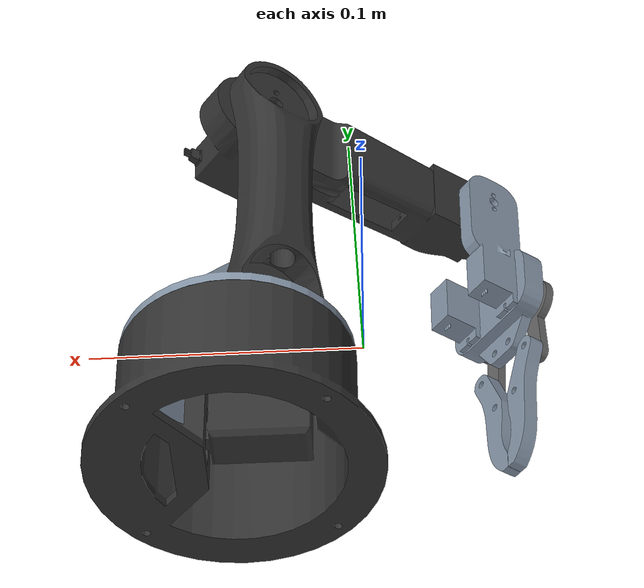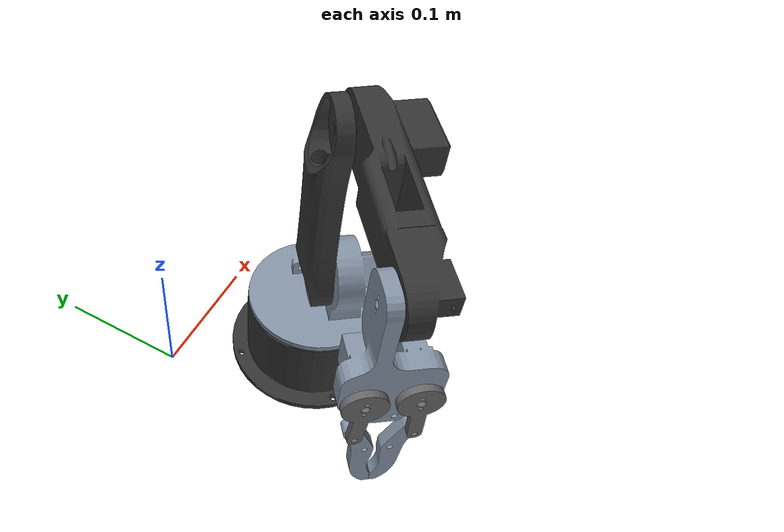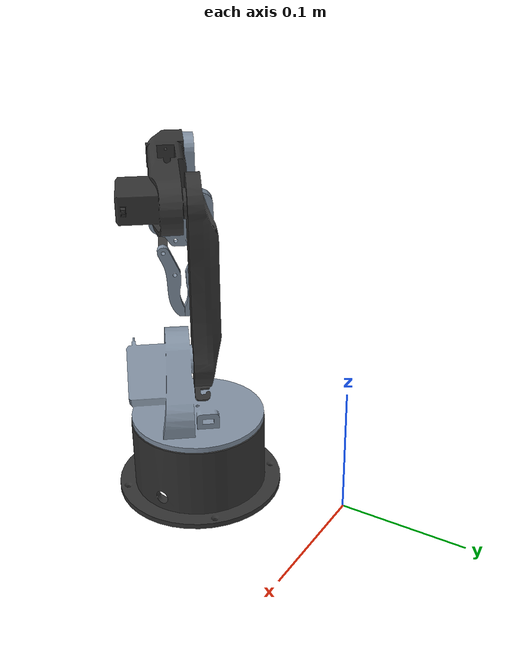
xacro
<?xml version="1.0"?>
<robot xmlns:xacro="http://www.ros.org/wiki/xacro" name="urdf_moveit">
    <xacro:arg name="initial_positions_file" default="initial_positions.yaml" />

    <!-- Import urdf_moveit urdf file -->
    <xacro:include filename="$(find my_robot_arm_pkg)/urdf/urdf_moveit.urdf" />

    <!-- Import control_xacro -->
    <xacro:include filename="urdf_moveit.ros2_control.xacro" />

    <xacro:urdf_moveit_ros2_control name="FakeSystem" initial_positions_file="$(arg initial_positions_file)"/>

</robot>

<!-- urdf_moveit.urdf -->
<robot name="urdf_moveit" xmlns:xacro="http://www.ros.org/wiki/xacro">

  <link name="world"/>

  <joint name="world_to_base" type="fixed">
    <parent link="world"/>
    <child link="base_link"/>
  </joint>

   <link
    name="base_link">
    <inertial>
      <origin
        xyz="0.052962 -0.094417 0.049594"
        rpy="0 0 0" />
      <mass
        value="0.119" />
      <inertia
        ixx="0.00013383"
        ixy="6.8295E-11"
        ixz="3.6366E-06"
        iyy="0.00014723"
        iyz="5.1205E-12"
        izz="0.000214" />
    </inertial>
    <visual>
      <origin
        xyz="0 0 0"
        rpy="0 0 0" />
      <geometry>
        <mesh
          filename="file:///home/ahmed/Robotics-Project-main/src/my_robot_arm_pkg/meshes/base_link.STL" />
      </geometry>
      <material
        name="">
        <color
          rgba="0.2 0.2 0.2 1.0" />
      </material>
    </visual>
    <collision>
      <origin
        xyz="0 0 0"
        rpy="0 0 0" />
      <geometry>
        <mesh
          filename="file:///home/ahmed/Robotics-Project-main/src/my_robot_arm_pkg/meshes/base_link.STL" />
      </geometry>
    </collision>
  </link>
  <link
    name="link1">
    <inertial>
      <origin
        xyz="0.0059207 -0.012971 0.022635"
        rpy="0 0 0" />
      <mass
        value="0.093" />
      <inertia
        ixx="5.7426E-05"
        ixy="-5.6415E-06"
        ixz="3.3676E-06"
        iyy="5.9444E-05"
        iyz="8.899E-06"
        izz="6.238E-05" />
    </inertial>
    <visual>
      <origin
        xyz="0 0 0"
        rpy="0 0 0" />
      <geometry>
        <mesh
          filename="file:///home/ahmed/Robotics-Project-main/src/my_robot_arm_pkg/meshes/link1.STL" />
      </geometry>
      <material
        name="">
        <color
          rgba="0.52 0.58 0.65 1.0" />
      </material>
    </visual>
    <collision>
      <origin
        xyz="0 0 0"
        rpy="0 0 0" />
      <geometry>
        <mesh
          filename="file:///home/ahmed/Robotics-Project-main/src/my_robot_arm_pkg/meshes/link1.STL" />
      </geometry>
    </collision>
  </link>
  <joint
    name="J1"
    type="revolute">
    <origin
      xyz="0.05542 -0.094417 0.082"
      rpy="0 0 0" />
    <parent
      link="base_link" />
    <child
      link="link1" />
    <axis
      xyz="0 0 1" />
    <limit
      lower="0"
      upper="3.14"
      effort="0.92"
      velocity="6.16" />
  </joint>
  <link
    name="link2">
    <inertial>
      <origin
        xyz="-0.00012999 0.058589 0.0077691"
        rpy="0 0 0" />
      <mass
        value="0.032" />
      <inertia
        ixx="0.00010704"
        ixy="-1.7383E-09"
        ixz="2.5177E-10"
        iyy="9.11E-06"
        iyz="2.396E-07"
        izz="0.00011184" />
    </inertial>
    <visual>
      <origin
        xyz="0 0 0"
        rpy="0 0 0" />
      <geometry>
        <mesh
          filename="file:///home/ahmed/Robotics-Project-main/src/my_robot_arm_pkg/meshes/link2.STL" />
      </geometry>
      <material
        name="">
        <color
          rgba="0.2 0.2 0.2 1.0" />
      </material>
    </visual>
    <collision>
      <origin
        xyz="0 0 0"
        rpy="0 0 0" />
      <geometry>
        <mesh
          filename="file:///home/ahmed/Robotics-Project-main/src/my_robot_arm_pkg/meshes/link2.STL" />
      </geometry>
    </collision>
  </link>
  <joint
    name="J2"
    type="revolute">
    <origin
      xyz="-0.0099117 -0.009936 0.040276"
      rpy="1.5708 0 -2.4836" />
    <parent
      link="link1" />
    <child
      link="link2" />
    <axis
      xyz="0 0 -1" />
    <limit
      lower="-1.57"
      upper="1.57"
      effort="0.92"
      velocity="6.16" />
  </joint>
  <link
    name="link3">
    <inertial>
      <origin
        xyz="0.045369 -4.58E-05 -0.01512"
        rpy="0 0 0" />
      <mass
        value="0.101" />
      <inertia
        ixx="1.8199E-05"
        ixy="-5.8051E-08"
        ixz="-4.9913E-08"
        iyy="6.8738E-05"
        iyz="4.0491E-09"
        izz="6.9563E-05" />
    </inertial>
    <visual>
      <origin
        xyz="0 0 0"
        rpy="0 0 0" />
      <geometry>
        <mesh
          filename="file:///home/ahmed/Robotics-Project-main/src/my_robot_arm_pkg/meshes/link3.STL" />
      </geometry>
      <material
        name="">
        <color
          rgba="0.2 0.2 0.2 1.0" />
      </material>
    </visual>
    <collision>
      <origin
        xyz="0 0 0"
        rpy="0 0 0" />
      <geometry>
        <mesh
          filename="file:///home/ahmed/Robotics-Project-main/src/my_robot_arm_pkg/meshes/link3.STL" />
      </geometry>
    </collision>
  </link>
  <joint
    name="J3"
    type="revolute">
    <origin
      xyz="0 0.12 0"
      rpy="0 0 0" />
    <parent
      link="link2" />
    <child
      link="link3" />
    <axis
      xyz="0 0 1" />
    <limit
      lower="-"
      upper="3.14"
      effort="0.92"
      velocity="6.16" />
  </joint>
  <link
    name="link4">
    <inertial>
      <origin
        xyz="-0.0029037 0.043012 -0.0031096"
        rpy="0 0 0" />
      <mass
        value="0.0326" />
      <inertia
        ixx="1.9847E-05"
        ixy="2.5863E-06"
        ixz="-3.8847E-07"
        iyy="5.6319E-06"
        iyz="1.9904E-06"
        izz="1.8296E-05" />
    </inertial>
    <visual>
      <origin
        xyz="0 0 0"
        rpy="0 0 0" />
      <geometry>
        <mesh
          filename="file:///home/ahmed/Robotics-Project-main/src/my_robot_arm_pkg/meshes/link4.STL" />
      </geometry>
      <material
        name="">
        <color
          rgba="0.52 0.58 0.65 1.0" />
      </material>
    </visual>
    <collision>
      <origin
        xyz="0 0 0"
        rpy="0 0 0" />
      <geometry>
        <mesh
          filename="file:///home/ahmed/Robotics-Project-main/src/my_robot_arm_pkg/meshes/link4.STL" />
      </geometry>
    </collision>
  </link>
  <joint
    name="J4"
    type="revolute">
    <origin
      xyz="0.11785 -0.0003 0.00515"
      rpy="0 0 -3.1416" />
    <parent
      link="link3" />
    <child
      link="link4" />
    <axis
      xyz="0 0 1" />
    <limit
      lower="0"
      upper="3.14"
      effort="0.13"
      velocity="8.72" />
  </joint>
  <link
    name="link6">
    <inertial>
      <origin
        xyz="0.00039698 -0.0062489 0.002"
        rpy="0 0 0" />
      <mass
        value="0.002" />
      <inertia
        ixx="3.3647E-07"
        ixy="1.6687E-08"
        ixz="-1.7255E-17"
        iyy="7.4869E-08"
        iyz="3.4134E-16"
        izz="4.0497E-07" />
    </inertial>
    <visual>
      <origin
        xyz="0 0 0"
        rpy="0 0 0" />
      <geometry>
        <mesh
          filename="file:///home/ahmed/Robotics-Project-main/src/my_robot_arm_pkg/meshes/link6.STL" />
      </geometry>
      <material
        name="">
        <color
          rgba="0.4 0.4 0.4 1.0" />
      </material>
    </visual>
    <collision>
      <origin
        xyz="0 0 0"
        rpy="0 0 0" />
      <geometry>
        <mesh
          filename="file:///home/ahmed/Robotics-Project-main/src/my_robot_arm_pkg/meshes/link6.STL" />
      </geometry>
    </collision>
  </link>
  <joint
    name="J6"
    type="revolute">
    <origin
      xyz="-0.01585 0.0581 -0.0194"
      rpy="3.1416 1.5708 0" />
    <parent
      link="link4" />
    <child
      link="link6" />
    <axis
      xyz="0 0 -1" />
    <limit
      upper="0"
      lower="-1.501"
      effort="0.13"
      velocity="8.72" />
  </joint>
  <link
    name="leftTip">
    <inertial>
      <origin
        xyz="-0.0066699 -0.026438 -0.003425"
        rpy="0 0 0" />
      <mass
        value="0.0028" />
      <inertia
        ixx="1.3145E-06"
        ixy="-2.1507E-07"
        ixz="9.0908E-12"
        iyy="1.0069E-07"
        iyz="6.1836E-13"
        izz="1.3812E-06" />
    </inertial>
    <visual>
      <origin
        xyz="0 0 0"
        rpy="0 0 0" />
      <geometry>
        <mesh
          filename="file:///home/ahmed/Robotics-Project-main/src/my_robot_arm_pkg/meshes/leftTip.STL" />
      </geometry>
      <material
        name="">
        <color
          rgba="0.52 0.58 0.65 1.0" />
      </material>
    </visual>
    <collision>
      <origin
        xyz="0 0 0"
        rpy="0 0 0" />
      <geometry>
        <mesh
          filename="file:///home/ahmed/Robotics-Project-main/src/my_robot_arm_pkg/meshes/leftTip.STL" />
      </geometry>
    </collision>
  </link>
  <joint name="leftTip_joint" type="revolute">
    <origin xyz="0.0019496 -0.030688 0" rpy="0 0 0" />
    <parent link="link6" />
    <child link="leftTip" />
    <axis xyz="0 0 1" />
    <limit upper="0" lower="-1.501" effort="10" velocity="1.0" />
  </joint>
  <link
    name="link5">
    <inertial>
      <origin
        xyz="-0.00039698 -0.0062489 0.002"
        rpy="0 0 0" />
      <mass
        value="0.002" />
      <inertia
        ixx="3.3647E-07"
        ixy="-1.6687E-08"
        ixz="1.7255E-17"
        iyy="7.4869E-08"
        iyz="3.4134E-16"
        izz="4.0497E-07" />
    </inertial>
    <visual>
      <origin
        xyz="0 0 0"
        rpy="0 0 0" />
      <geometry>
        <mesh
          filename="file:///home/ahmed/Robotics-Project-main/src/my_robot_arm_pkg/meshes/link5.STL" />
      </geometry>
      <material
        name="">
        <color
          rgba="0.4 0.4 0.4 1.0" />
      </material>
    </visual>
    <collision>
      <origin
        xyz="0 0 0"
        rpy="0 0 0" />
      <geometry>
        <mesh
          filename="file:///home/ahmed/Robotics-Project-main/src/my_robot_arm_pkg/meshes/link5.STL" />
      </geometry>
    </collision>
  </link>
  <joint
    name="J5"
    type="revolute">
    <origin
      xyz="-0.01585 0.0581 0.0084"
      rpy="3.1416 1.5708 0" />
    <parent
      link="link4" />
    <child
      link="link5" />
    <axis
      xyz="0 0 -1" />
    <limit
      upper="1.501"
      lower="0"
      effort="0.13"
      velocity="8.72" />
  </joint>
  <link
    name="rightTip">
    <inertial>
      <origin
        xyz="0.0066699 -0.026438 -0.003425"
        rpy="0 0 0" />
      <mass
        value="0.0028" />
      <inertia
        ixx="1.3145E-06"
        ixy="2.1507E-07"
        ixz="9.0903E-12"
        iyy="1.0069E-07"
        iyz="-6.1572E-13"
        izz="1.3812E-06" />
    </inertial>
    <visual>
      <origin
        xyz="0 0 0"
        rpy="0 0 0" />
      <geometry>
        <mesh
          filename="file:///home/ahmed/Robotics-Project-main/src/my_robot_arm_pkg/meshes/rightTip.STL" />
      </geometry>
      <material
        name="">
        <color
          rgba="0.52 0.58 0.65 1.0" />
      </material>
    </visual>
    <collision>
      <origin
        xyz="0 0 0"
        rpy="0 0 0" />
      <geometry>
        <mesh
          filename="file:///home/ahmed/Robotics-Project-main/src/my_robot_arm_pkg/meshes/rightTip.STL" />
      </geometry>
    </collision>
  </link>
  <joint name="rightTip_joint" type="revolute">
    <origin xyz="-0.0019496 -0.030688 0" rpy="0 0 0" />
    <parent link="link5" />
    <child link="rightTip" />
    <axis xyz="0 0 1" />
    <limit lower="0" upper="1.5" effort="10" velocity="1.0" />
  </joint>

  <ros2_control name="RobotSystem" type="system">
    <hardware>
      <plugin>gz_ros2_control/GazeboSimSystem</plugin>
    </hardware>

    <joint name="J1">
      <command_interface name="position"/>
      <state_interface name="position"/>
      <state_interface name="velocity"/>
    </joint>
    <joint name="J2">
      <command_interface name="position"/>
      <state_interface name="position"/>
      <state_interface name="velocity"/>
    </joint>
    <joint name="J3">
      <command_interface name="position"/>
      <state_interface name="position"/>
      <state_interface name="velocity"/>
    </joint>
    <joint name="J4">
      <command_interface name="position"/>
      <state_interface name="position"/>
      <state_interface name="velocity"/>
    </joint>
    <joint name="J5">
      <command_interface name="position"/>
      <state_interface name="position"/>
      <state_interface name="velocity"/>
    </joint>
    <joint name="J6">
      <command_interface name="position"/>
      <state_interface name="position"/>
      <state_interface name="velocity"/>
    </joint>
    <joint name="leftTip_joint">
      <command_interface name="position"/>
      <state_interface name="position"/>
      <state_interface name="velocity"/>
    </joint>
    <joint name="rightTip_joint">
      <command_interface name="position"/>
      <state_interface name="position"/>
      <state_interface name="velocity"/>
    </joint>
  </ros2_control>

  <gazebo>
    <plugin filename="gz_ros2_control-system" name="gz_ros2_control::GazeboSimROS2ControlPlugin">
      <parameters>/home/ahmed/Robotics-Project-main/install/my_robot_arm_pkg/share/my_robot_arm_pkg/config/joint_controllers.yaml</parameters>
    </plugin>
  </gazebo>
</robot>
